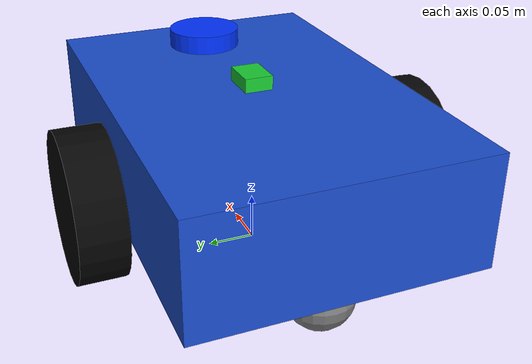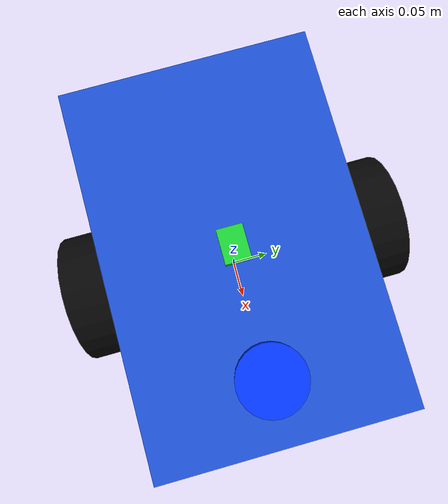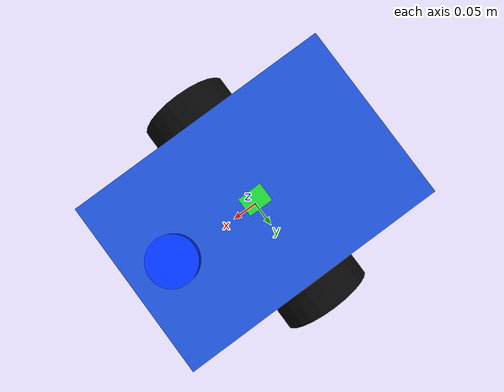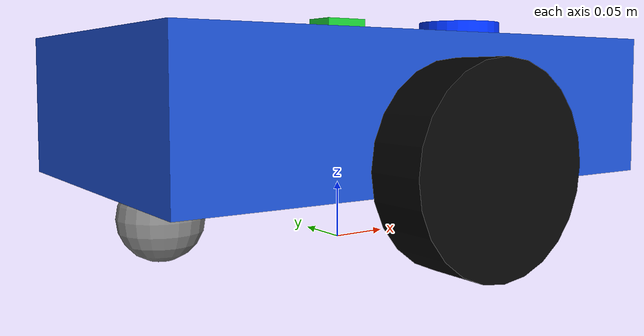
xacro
<?xml version="1.0"?>

<robot name="diffbot" xmlns:xacro="http://www.ros.org/wiki/xacro">

  <!-- Parameters                -->

  <xacro:property name="chassis_length" value="0.45"/>

  <xacro:property name="chassis_width"  value="0.30"/>

  <xacro:property name="chassis_height" value="0.12"/>

  <xacro:property name="chassis_mass"   value="5.0"/>

  <xacro:property name="chassis_z"      value="0.12"/>

  <xacro:property name="wheel_radius"     value="0.08"/>

  <xacro:property name="wheel_width"      value="0.05"/>

  <xacro:property name="wheel_mass"       value="0.5"/>

  <xacro:property name="wheel_separation" value="0.36"/>

  <xacro:property name="wheel_x"          value="0.0"/>

  <xacro:property name="wheel_z"          value="0.08"/>

  <xacro:property name="caster_radius" value="0.035"/>

  <xacro:property name="caster_mass"   value="0.1"/>

  <xacro:property name="caster_x"      value="-0.17"/>

  <xacro:property name="caster_y"      value="0.0"/>

  <xacro:property name="caster_z"      value="0.035"/>

  <!-- Materials                 -->

  <material name="body_blue">

    <color rgba="0.10 0.30 0.80 1.0"/>

  </material>

  <material name="wheel_black">

    <color rgba="0.02 0.02 0.02 1.0"/>

  </material>

  <material name="caster_gray">

    <color rgba="0.50 0.50 0.50 1.0"/>

  </material>

  <!-- Reusable Macros           -->

  <xacro:macro name="box_inertial" params="mass x y z origin_z">

    <inertial>

      <origin xyz="0 0 ${origin_z}" rpy="0 0 0"/>

      <mass value="${mass}"/>

      <inertia

        ixx="${(mass / 12.0) * (y * y + z * z)}"

        ixy="0.0"

        ixz="0.0"

        iyy="${(mass / 12.0) * (x * x + z * z)}"

        iyz="0.0"

        izz="${(mass / 12.0) * (x * x + y * y)}"/>

    </inertial>

  </xacro:macro>

  <xacro:macro name="wheel_inertial" params="mass radius width">

    <inertial>

      <origin xyz="0 0 0" rpy="0 0 0"/>

      <mass value="${mass}"/>

      <inertia

        ixx="${(mass / 12.0) * (3.0 * radius * radius + width * width)}"

        ixy="0.0"

        ixz="0.0"

        iyy="${0.5 * mass * radius * radius}"

        iyz="0.0"

        izz="${(mass / 12.0) * (3.0 * radius * radius + width * width)}"/>

    </inertial>

  </xacro:macro>

  <xacro:macro name="sphere_inertial" params="mass radius">

    <inertial>

      <origin xyz="0 0 0" rpy="0 0 0"/>

      <mass value="${mass}"/>

      <inertia

        ixx="${0.4 * mass * radius * radius}"

        ixy="0.0"

        ixz="0.0"

        iyy="${0.4 * mass * radius * radius}"

        iyz="0.0"

        izz="${0.4 * mass * radius * radius}"/>

    </inertial>

  </xacro:macro>

  <xacro:macro name="wheel_link" params="side">

    <link name="${side}_wheel_link">

      <visual>

        <!-- Cylinder axis is z by default. Rotate around x so wheel axis aligns with y. -->

        <origin xyz="0 0 0" rpy="1.5708 0 0"/>

        <geometry>

          <cylinder radius="${wheel_radius}" length="${wheel_width}"/>

        </geometry>

        <material name="wheel_black"/>

      </visual>

      <collision>

        <origin xyz="0 0 0" rpy="1.5708 0 0"/>

        <geometry>

          <cylinder radius="${wheel_radius}" length="${wheel_width}"/>

        </geometry>

      </collision>

      <xacro:wheel_inertial

        mass="${wheel_mass}"

        radius="${wheel_radius}"

        width="${wheel_width}"/>

    </link>

  </xacro:macro>

  <!-- Base Link                 -->

  <link name="base_link">

    <visual>

      <origin xyz="0 0 ${chassis_z}" rpy="0 0 0"/>

      <geometry>

        <box size="${chassis_length} ${chassis_width} ${chassis_height}"/>

      </geometry>

      <material name="body_blue"/>

    </visual>

    <collision>

      <origin xyz="0 0 ${chassis_z}" rpy="0 0 0"/>

      <geometry>

        <box size="${chassis_length} ${chassis_width} ${chassis_height}"/>

      </geometry>

    </collision>

    <xacro:box_inertial

      mass="${chassis_mass}"

      x="${chassis_length}"

      y="${chassis_width}"

      z="${chassis_height}"

      origin_z="${chassis_z}"/>

  </link>

  <!-- Wheel Links               -->

  <xacro:wheel_link side="left"/>

  <xacro:wheel_link side="right"/>

  <!-- Caster Link               -->

  <link name="caster_link">

    <visual>

      <origin xyz="0 0 0" rpy="0 0 0"/>

      <geometry>

        <sphere radius="${caster_radius}"/>

      </geometry>

      <material name="caster_gray"/>

    </visual>

    <collision>

      <origin xyz="0 0 0" rpy="0 0 0"/>

      <geometry>

        <sphere radius="${caster_radius}"/>

      </geometry>

    </collision>

    <xacro:sphere_inertial

      mass="${caster_mass}"

      radius="${caster_radius}"/>

  </link>

	<link name="lidar_link">
		<visual>
			<geometry>
				<cylinder radius="0.04" length="0.04"/>
			</geometry>
			<origin xyz="0 0 0" rpy="0 0 0"/>
			<material name="blue">
				<color rgba="0.0 0.2 1.0 1.0"/>
			</material>
		</visual>

		<collision>
			<geometry>
				<cylinder radius="0.04" length="0.04"/>
			</geometry>
			<origin xyz="0 0 0" rpy="0 0 0"/>
		</collision>

		<inertial>
			<mass value="0.05"/>
			<origin xyz="0 0 0" rpy="0 0 0"/>
			<inertia ixx="0.00005" ixy="0.0" ixz="0.0"
					 iyy="0.00005" iyz="0.0"
					 izz="0.00005"/>
		</inertial>
	</link>

  <!-- Day 105 IMU Link          -->

  <link name="imu_link">
    <visual>
      <origin xyz="0 0 0" rpy="0 0 0"/>
      <geometry>
        <box size="0.04 0.03 0.015"/>
      </geometry>
      <material name="imu_green">
        <color rgba="0.1 0.8 0.2 1.0"/>
      </material>
    </visual>

    <collision>
      <origin xyz="0 0 0" rpy="0 0 0"/>
      <geometry>
        <box size="0.04 0.03 0.015"/>
      </geometry>
    </collision>

    <inertial>
      <origin xyz="0 0 0" rpy="0 0 0"/>
      <mass value="0.02"/>
      <inertia
        ixx="0.000002"
        ixy="0.0"
        ixz="0.0"
        iyy="0.000003"
        iyz="0.0"
        izz="0.000004"/>
    </inertial>
  </link>

  <!-- Joints                    -->

	<joint name="lidar_joint" type="fixed">
		<parent link="base_link"/>
		<child link="lidar_link"/>
		<origin xyz="0.15 0 0.18" rpy="0 0 0"/>
	</joint>

  <joint name="imu_joint" type="fixed">
    <parent link="base_link"/>
    <child link="imu_link"/>
    <origin xyz="0.0 0.0 0.19" rpy="0 0 0"/>
  </joint>

  <joint name="left_wheel_joint" type="continuous">

    <parent link="base_link"/>

    <child link="left_wheel_link"/>

    <origin xyz="${wheel_x} ${wheel_separation / 2.0} ${wheel_z}" rpy="0 0 0"/>

    <axis xyz="0 1 0"/>

  </joint>

  <joint name="right_wheel_joint" type="continuous">

    <parent link="base_link"/>

    <child link="right_wheel_link"/>

    <origin xyz="${wheel_x} ${-wheel_separation / 2.0} ${wheel_z}" rpy="0 0 0"/>

    <axis xyz="0 1 0"/>

  </joint>

  <joint name="caster_joint" type="fixed">

    <parent link="base_link"/>

    <child link="caster_link"/>

    <origin xyz="${caster_x} ${caster_y} ${caster_z}" rpy="0 0 0"/>

  </joint>

	<ros2_control name="DiffBotSystem" type="system">
		<hardware>
			<plugin>gz_ros2_control/GazeboSimSystem</plugin>
		</hardware>

		<joint name="left_wheel_joint">
			<command_interface name="velocity">
				<param name="min">-10.0</param>
				<param name="max">10.0</param>
			</command_interface>
			<state_interface name="position"/>
			<state_interface name="velocity"/>
		</joint>

		<joint name="right_wheel_joint">
			<command_interface name="velocity">
				<param name="min">-10.0</param>
				<param name="max">10.0</param>
			</command_interface>
			<state_interface name="position"/>
			<state_interface name="velocity"/>
		</joint>
	</ros2_control>

  <!-- Day 105 Gazebo IMU        -->

  <gazebo reference="imu_link">
    <sensor name="diffbot_imu" type="imu">
      <topic>/imu/data</topic>
      <update_rate>50</update_rate>
      <always_on>true</always_on>
      <visualize>false</visualize>

      <imu>
        <angular_velocity>
          <x>
            <noise type="gaussian">
              <mean>0.0</mean>
              <stddev>0.002</stddev>
              <bias_mean>0.0</bias_mean>
              <bias_stddev>0.0002</bias_stddev>
            </noise>
          </x>

          <y>
            <noise type="gaussian">
              <mean>0.0</mean>
              <stddev>0.002</stddev>
              <bias_mean>0.0</bias_mean>
              <bias_stddev>0.0002</bias_stddev>
            </noise>
          </y>

          <z>
            <noise type="gaussian">
              <mean>0.0</mean>
              <stddev>0.002</stddev>
              <bias_mean>0.0</bias_mean>
              <bias_stddev>0.0002</bias_stddev>
            </noise>
          </z>
        </angular_velocity>

        <linear_acceleration>
          <x>
            <noise type="gaussian">
              <mean>0.0</mean>
              <stddev>0.03</stddev>
              <bias_mean>0.0</bias_mean>
              <bias_stddev>0.003</bias_stddev>
            </noise>
          </x>

          <y>
            <noise type="gaussian">
              <mean>0.0</mean>
              <stddev>0.03</stddev>
              <bias_mean>0.0</bias_mean>
              <bias_stddev>0.003</bias_stddev>
            </noise>
          </y>

          <z>
            <noise type="gaussian">
              <mean>0.0</mean>
              <stddev>0.03</stddev>
              <bias_mean>0.0</bias_mean>
              <bias_stddev>0.003</bias_stddev>
            </noise>
          </z>
        </linear_acceleration>
      </imu>
    </sensor>
  </gazebo>

	<gazebo reference="lidar_link">
		<sensor name="diffbot_lidar" type="gpu_lidar">
			<topic>/scan</topic>
			<update_rate>10</update_rate>
			<ray>
				<scan>
					<horizontal>
						<samples>360</samples>
						<resolution>1</resolution>
						<min_angle>-3.14159</min_angle>
						<max_angle>3.14159</max_angle>
					</horizontal>
				</scan>
				<range>
					<min>0.08</min>
					<max>8.0</max>
					<resolution>0.01</resolution>
				</range>
			</ray>
			<always_on>true</always_on>
			<visualize>true</visualize>
		</sensor>
	</gazebo>

	<gazebo>
		<plugin filename="gz_ros2_control-system" name="gz_ros2_control::GazeboSimROS2ControlPlugin">
			<parameters>$(find cpp_robotics_sim_ros)/config/ros2_control.yaml</parameters>
		</plugin>
	</gazebo>

</robot>
